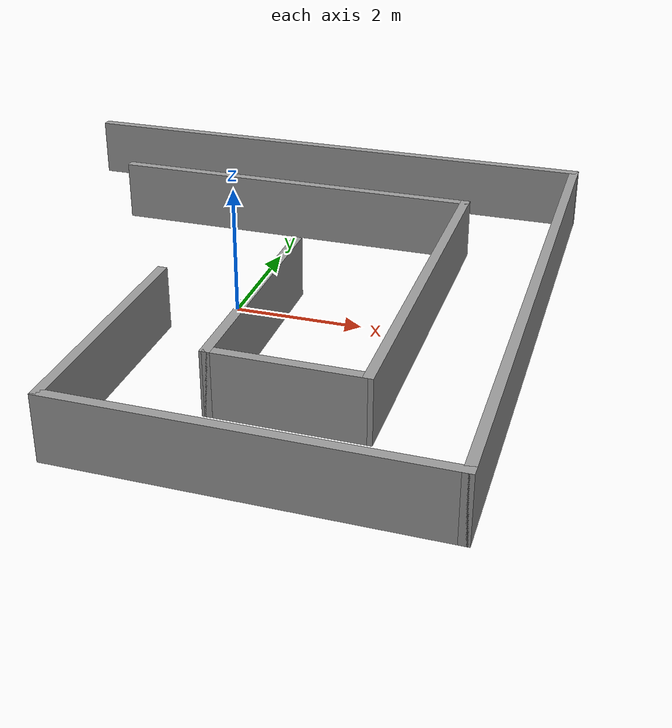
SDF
<?xml version='1.0'?>
<sdf version='1.5'>
  <model name='Circuit_ql_2'>
    <pose frame=''>-0.076 0.178 0 0 -0 0</pose>
    <link name='Wall_13'>
      <collision name='Wall_13_Collision'>
        <geometry>
          <box>
            <size>3.75 0.15 1</size>
          </box>
        </geometry>
        <pose frame=''>0 0 0.5 0 -0 0</pose>
      </collision>
      <visual name='Wall_13_Visual'>
        <pose frame=''>0 0 0.5 0 -0 0</pose>
        <geometry>
          <box>
            <size>3.75 0.15 1</size>
          </box>
        </geometry>
        <material>
          <script>
            <uri>file://media/materials/scripts/gazebo.material</uri>
            <name>Gazebo/Grey</name>
          </script>
          <ambient>1 1 1 1</ambient>
        </material>
      </visual>
      <pose frame=''>0.814 -1.291 0 0 0 -1.5708</pose>
    </link>
    <link name='Wall_14'>
      <collision name='Wall_14_Collision'>
        <geometry>
          <box>
            <size>2.25 0.15 1</size>
          </box>
        </geometry>
        <pose frame=''>0 0 0.5 0 -0 0</pose>
      </collision>
      <visual name='Wall_14_Visual'>
        <pose frame=''>0 0 0.5 0 -0 0</pose>
        <geometry>
          <box>
            <size>2.25 0.15 1</size>
          </box>
        </geometry>
        <material>
          <script>
            <uri>file://media/materials/scripts/gazebo.material</uri>
            <name>Gazebo/Grey</name>
          </script>
          <ambient>1 1 1 1</ambient>
        </material>
      </visual>
      <pose frame=''>1.9 -3.091 0 0 -0 0</pose>
    </link>
    <link name='Wall_15'>
      <collision name='Wall_15_Collision'>
        <geometry>
          <box>
            <size>5.98502 0.15 1</size>
          </box>
        </geometry>
        <pose frame=''>0 0 0.5 0 -0 0</pose>
      </collision>
      <visual name='Wall_15_Visual'>
        <pose frame=''>0 0 0.5 0 -0 0</pose>
        <geometry>
          <box>
            <size>5.98502 0.15 1</size>
          </box>
        </geometry>
        <material>
          <script>
            <uri>file://media/materials/scripts/gazebo.material</uri>
            <name>Gazebo/Grey</name>
          </script>
          <ambient>1 1 1 1</ambient>
        </material>
      </visual>
      <pose frame=''>3.0215 -0.1735 0 0 -0 1.56823</pose>
    </link>
    <link name='Wall_16'>
      <collision name='Wall_16_Collision'>
        <geometry>
          <box>
            <size>6.2 0.15 1</size>
          </box>
        </geometry>
        <pose frame=''>0 0 0.5 0 -0 0</pose>
      </collision>
      <visual name='Wall_16_Visual'>
        <pose frame=''>0 0 0.5 0 -0 0</pose>
        <geometry>
          <box>
            <size>6.2 0.15 1</size>
          </box>
        </geometry>
        <material>
          <script>
            <uri>file://media/materials/scripts/gazebo.material</uri>
            <name>Gazebo/Grey</name>
          </script>
          <ambient>1 1 1 1</ambient>
        </material>
      </visual>
      <pose frame=''>-0.02 2.744 0 0 -0 3.14159</pose>
    </link>
    <link name='Wall_2'>
      <collision name='Wall_2_Collision'>
        <geometry>
          <box>
            <size>3.7 0.15 1</size>
          </box>
        </geometry>
        <pose frame=''>0 0 0.5 0 -0 0</pose>
      </collision>
      <visual name='Wall_2_Visual'>
        <pose frame=''>0 0 0.5 0 -0 0</pose>
        <geometry>
          <box>
            <size>3.7 0.15 1</size>
          </box>
        </geometry>
        <material>
          <script>
            <uri>file://media/materials/scripts/gazebo.material</uri>
            <name>Gazebo/Grey</name>
          </script>
          <ambient>1 1 1 1</ambient>
        </material>
      </visual>
      <pose frame=''>-0.75 -2.875 0 0 0 -1.5708</pose>
    </link>
    <link name='Wall_3'>
      <collision name='Wall_3_Collision'>
        <geometry>
          <box>
            <size>5.5 0.15 1</size>
          </box>
        </geometry>
        <pose frame=''>0 0 0.5 0 -0 0</pose>
      </collision>
      <visual name='Wall_3_Visual'>
        <pose frame=''>0 0 0.5 0 -0 0</pose>
        <geometry>
          <box>
            <size>5.5 0.15 1</size>
          </box>
        </geometry>
        <material>
          <script>
            <uri>file://media/materials/scripts/gazebo.material</uri>
            <name>Gazebo/Grey</name>
          </script>
          <ambient>1 1 1 1</ambient>
        </material>
      </visual>
      <pose frame=''>1.925 -4.675 0 0 -0 0</pose>
    </link>
    <link name='Wall_7'>
      <collision name='Wall_7_Collision'>
        <geometry>
          <box>
            <size>9.5 0.15 1</size>
          </box>
        </geometry>
        <pose frame=''>0 0 0.5 0 -0 0</pose>
      </collision>
      <visual name='Wall_7_Visual'>
        <pose frame=''>0 0 0.5 0 -0 0</pose>
        <geometry>
          <box>
            <size>9.5 0.15 1</size>
          </box>
        </geometry>
        <material>
          <script>
            <uri>file://media/materials/scripts/gazebo.material</uri>
            <name>Gazebo/Grey</name>
          </script>
          <ambient>1 1 1 1</ambient>
        </material>
      </visual>
      <pose frame=''>4.6 0 0 0 -0 1.5708</pose>
    </link>
    <link name='Wall_9'>
      <collision name='Wall_9_Collision'>
        <geometry>
          <box>
            <size>9.25 0.15 1</size>
          </box>
        </geometry>
        <pose frame=''>0 0 0.5 0 -0 0</pose>
      </collision>
      <visual name='Wall_9_Visual'>
        <pose frame=''>0 0 0.5 0 -0 0</pose>
        <geometry>
          <box>
            <size>9.25 0.15 1</size>
          </box>
        </geometry>
        <material>
          <script>
            <uri>file://media/materials/scripts/gazebo.material</uri>
            <name>Gazebo/Grey</name>
          </script>
          <ambient>1 1 1 1</ambient>
        </material>
      </visual>
      <pose frame=''>0.05 4.675 0 0 -0 3.14159</pose>
    </link>
    <static>1</static>
  </model>
</sdf>
